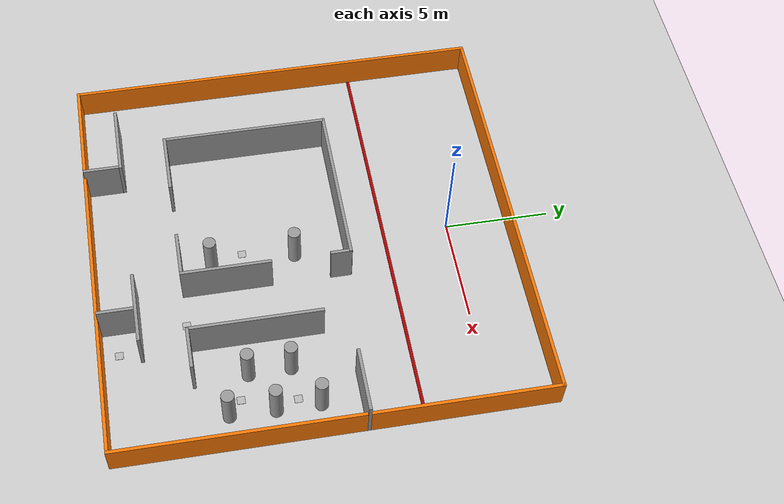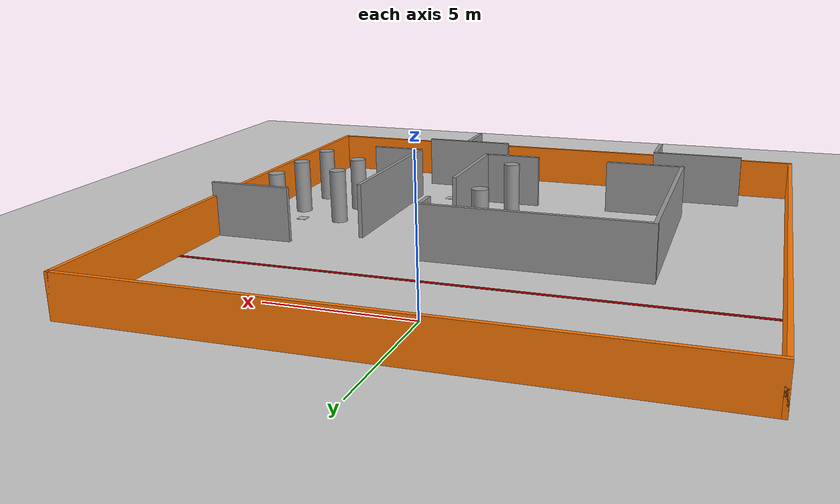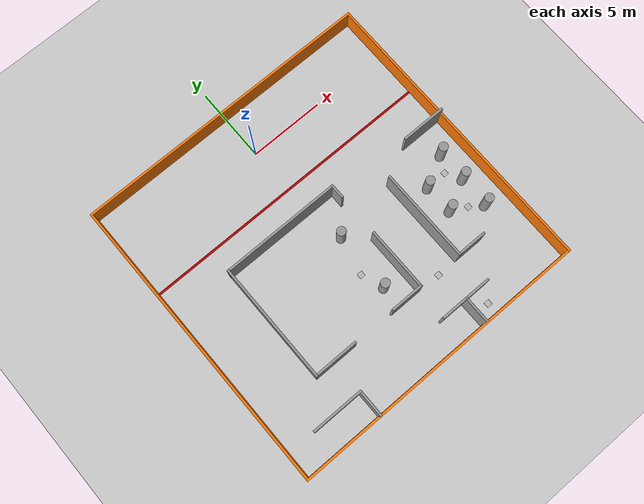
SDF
<sdf version="1.7">
 <world name="default">
  <model name="ground_plane">
   <static>1</static>
   <link name="link">
    <collision name="collision">
     <geometry><plane><normal>0 0 1</normal><size>100 100</size></plane></geometry>
     <surface>
      <contact><collide_bitmask>65535</collide_bitmask></contact>
      <friction><ode><mu>100</mu><mu2>50</mu2></ode></friction>
     </surface>
    </collision>
    <visual name="visual">
     <cast_shadows>0</cast_shadows>
     <geometry><plane><normal>0 0 1</normal><size>100 100</size></plane></geometry>
     <material>
      <script><uri>file://media/materials/scripts/gazebo.material</uri><name>Gazebo/Grey</name></script>
     </material>
    </visual>
   </link>
  </model>
  <model name="SAFMC_WALL">
   <pose>0.0015 -7 0 0 -0 0</pose>
   <link name="Wall_0">
    <collision name="Wall_0_Collision">
     <geometry><box><size>20.15 0.15 1.5</size></box></geometry>
     <pose>0 0 0.75 0 -0 0</pose>
    </collision>
    <visual name="Wall_0_Visual">
     <pose>0 0 0.75 0 -0 0</pose>
     <geometry><box><size>20.15 0.15 1.5</size></box></geometry>
     <material>
      <script><uri>file://media/materials/scripts/gazebo.material</uri><name>Gazebo/Grey</name></script>
      <ambient>0.996078 0.47451 0.0196078 1</ambient>
     </material>
     <meta><layer>0</layer></meta>
    </visual>
    <pose>-0.0015 9.925 0 0 -0 0</pose>
   </link>
   <link name="Wall_11">
    <collision name="Wall_11_Collision">
     <geometry><box><size>3 0.15 2</size></box></geometry>
     <pose>0 0 1 0 -0 0</pose>
    </collision>
    <visual name="Wall_11_Visual">
     <pose>0 0 1 0 -0 0</pose>
     <geometry><box><size>3 0.15 2</size></box></geometry>
     <material>
      <script><uri>file://media/materials/scripts/gazebo.material</uri><name>Gazebo/Grey</name></script>
      <ambient>0 0 0 1</ambient>
     </material>
     <meta><layer>0</layer></meta>
    </visual>
    <pose>8.5765 1.34761 0 0 -0 3.14159</pose>
   </link>
   <link name="Wall_13">
    <collision name="Wall_13_Collision">
     <geometry><box><size>6.25 0.15 2</size></box></geometry>
     <pose>0 0 1 0 -0 0</pose>
    </collision>
    <visual name="Wall_13_Visual">
     <pose>0 0 1 0 -0 0</pose>
     <geometry><box><size>6.25 0.15 2</size></box></geometry>
     <material>
      <script><uri>file://media/materials/scripts/gazebo.material</uri><name>Gazebo/Grey</name></script>
      <ambient>0 0 0 1</ambient>
     </material>
     <meta><layer>0</layer></meta>
    </visual>
    <pose>4.837 -2.89853 0 0 -0 -1.5708</pose>
   </link>
   <link name="Wall_14">
    <collision name="Wall_14_Collision">
     <geometry><box><size>2 0.15 2</size></box></geometry>
     <pose>0 0 1 0 -0 0</pose>
    </collision>
    <visual name="Wall_14_Visual">
     <pose>0 0 1 0 -0 0</pose>
     <geometry><box><size>2 0.15 2</size></box></geometry>
     <material>
      <script><uri>file://media/materials/scripts/gazebo.material</uri><name>Gazebo/Grey</name></script>
      <ambient>0 0 0 1</ambient>
     </material>
     <meta><layer>0</layer></meta>
    </visual>
    <pose>5.80647 -5.94853 0 0 -0 0</pose>
   </link>
   <link name="Wall_16">
    <collision name="Wall_16_Collision">
     <geometry><box><size>1.80681 0.15 2</size></box></geometry>
     <pose>0 0 1 0 -0 0</pose>
    </collision>
    <visual name="Wall_16_Visual">
     <pose>0 0 1 0 -0 0</pose>
     <geometry><box><size>1.80681 0.15 2</size></box></geometry>
     <material>
      <script><uri>file://media/materials/scripts/gazebo.material</uri><name>Gazebo/Grey</name></script>
      <ambient>0 0 0 1</ambient>
     </material>
     <meta><layer>0</layer></meta>
    </visual>
    <pose>-4.6625 -9.03559 0 0 -0 1.5708</pose>
   </link>
   <link name="Wall_17">
    <collision name="Wall_17_Collision">
     <geometry><box><size>3.5 0.15 2</size></box></geometry>
     <pose>0 0 1 0 -0 0</pose>
    </collision>
    <visual name="Wall_17_Visual">
     <pose>0 0 1 0 -0 0</pose>
     <geometry><box><size>3.5 0.15 2</size></box></geometry>
     <material>
      <script><uri>file://media/materials/scripts/gazebo.material</uri><name>Gazebo/Grey</name></script>
      <ambient>0 0 0 1</ambient>
     </material>
     <meta><layer>0</layer></meta>
    </visual>
    <pose>-6.3375 -8.15747 0 0 -0 3.14159</pose>
   </link>
   <link name="Wall_19">
    <collision name="Wall_19_Collision">
     <geometry><box><size>3.5 0.15 2</size></box></geometry>
     <pose>0 0 1 0 -0 0</pose>
    </collision>
    <visual name="Wall_19_Visual">
     <pose>0 0 1 0 -0 0</pose>
     <geometry><box><size>3.5 0.15 2</size></box></geometry>
     <material>
      <script><uri>file://media/materials/scripts/gazebo.material</uri><name>Gazebo/Grey</name></script>
      <ambient>0 0 0 1</ambient>
     </material>
     <meta><layer>0</layer></meta>
    </visual>
    <pose>3.35655 -8.11703 0 0 -0 0</pose>
   </link>
   <link name="Wall_2">
    <collision name="Wall_2_Collision">
     <geometry><box><size>20 0.15 1.5</size></box></geometry>
     <pose>0 0 0.75 0 -0 0</pose>
    </collision>
    <visual name="Wall_2_Visual">
     <pose>0 0 0.75 0 -0 0</pose>
     <geometry><box><size>20 0.15 1.5</size></box></geometry>
     <material>
      <script><uri>file://media/materials/scripts/gazebo.material</uri><name>Gazebo/Grey</name></script>
      <ambient>0.996078 0.47451 0.0196078 1</ambient>
     </material>
     <meta><layer>0</layer></meta>
    </visual>
    <pose>-10.0015 0 0 0 -0 -1.5708</pose>
   </link>
   <link name="Wall_21">
    <collision name="Wall_21_Collision">
     <geometry><box><size>8 0.15 2</size></box></geometry>
     <pose>0 0 1 0 -0 0</pose>
    </collision>
    <visual name="Wall_21_Visual">
     <pose>0 0 1 0 -0 0</pose>
     <geometry><box><size>8 0.15 2</size></box></geometry>
     <material>
      <script><uri>file://media/materials/scripts/gazebo.material</uri><name>Gazebo/Grey</name></script>
      <ambient>0 0 0 1</ambient>
     </material>
     <meta><layer>0</layer></meta>
    </visual>
    <pose>-2.06232 1.94815 0 0 -0 0</pose>
   </link>
   <link name="Wall_23">
    <collision name="Wall_23_Collision">
     <geometry><box><size>8 0.15 2</size></box></geometry>
     <pose>0 0 1 0 -0 0</pose>
    </collision>
    <visual name="Wall_23_Visual">
     <pose>0 0 1 0 -0 0</pose>
     <geometry><box><size>8 0.15 2</size></box></geometry>
     <material>
      <script><uri>file://media/materials/scripts/gazebo.material</uri><name>Gazebo/Grey</name></script>
      <ambient>0 0 0 1</ambient>
     </material>
     <meta><layer>0</layer></meta>
    </visual>
    <pose>-5.97626 -1.97693 0 0 -0 -1.57086</pose>
   </link>
   <link name="Wall_28">
    <collision name="Wall_28_Collision">
     <geometry><box><size>1 0.15 2</size></box></geometry>
     <pose>0 0 1 0 -0 0</pose>
    </collision>
    <visual name="Wall_28_Visual">
     <pose>0 0 1 0 -0 0</pose>
     <geometry><box><size>1 0.15 2</size></box></geometry>
     <material>
      <script><uri>file://media/materials/scripts/gazebo.material</uri><name>Gazebo/Grey</name></script>
      <ambient>0 0 0 1</ambient>
     </material>
     <meta><layer>0</layer></meta>
    </visual>
    <pose>1.8884 1.50443 0 0 -0 -1.5708</pose>
   </link>
   <link name="Wall_31">
    <collision name="Wall_31_Collision">
     <geometry><box><size>4.25 0.15 2</size></box></geometry>
     <pose>0 0 1 0 -0 0</pose>
    </collision>
    <visual name="Wall_31_Visual">
     <pose>0 0 1 0 -0 0</pose>
     <geometry><box><size>4.25 0.15 2</size></box></geometry>
     <material>
      <script><uri>file://media/materials/scripts/gazebo.material</uri><name>Gazebo/Grey</name></script>
      <ambient>0 0 0 1</ambient>
     </material>
     <meta><layer>0</layer></meta>
    </visual>
    <pose>1.8905 -3.85 0 0 -0 1.5708</pose>
   </link>
   <link name="Wall_34">
    <collision name="Wall_34_Collision">
     <geometry><box><size>20 0.15 0.01</size></box></geometry>
     <pose>0 0 0.005 0 -0 0</pose>
    </collision>
    <visual name="Wall_34_Visual">
     <pose>0 0 0.005 0 -0 0</pose>
     <geometry><box><size>20 0.15 0.01</size></box></geometry>
     <material>
      <script><uri>file://media/materials/scripts/gazebo.material</uri><name>Gazebo/Grey</name></script>
      <ambient>0.666667 0 0 1</ambient>
     </material>
     <meta><layer>0</layer></meta>
    </visual>
    <pose>-0.0665 3.925 0 0 -0 0</pose>
   </link>
   <link name="Wall_40">
    <collision name="Wall_40_Collision">
     <geometry><box><size>3 0.15 2</size></box></geometry>
     <pose>0 0 1 0 -0 0</pose>
    </collision>
    <visual name="Wall_40_Visual">
     <pose>0 0 1 0 -0 0</pose>
     <geometry><box><size>3 0.15 2</size></box></geometry>
     <material>
      <script><uri>file://media/materials/scripts/gazebo.material</uri><name>Gazebo/Grey</name></script>
      <ambient>0 0 0 1</ambient>
     </material>
     <meta><layer>0</layer></meta>
    </visual>
    <pose>-4.5515 -5.902 0 0 -0 0</pose>
   </link>
   <link name="Wall_42">
    <collision name="Wall_42_Collision">
     <geometry><box><size>2.25 0.15 2</size></box></geometry>
     <pose>0 0 1 0 -0 0</pose>
    </collision>
    <visual name="Wall_42_Visual">
     <pose>0 0 1 0 -0 0</pose>
     <geometry><box><size>2.25 0.15 2</size></box></geometry>
     <material>
      <script><uri>file://media/materials/scripts/gazebo.material</uri><name>Gazebo/Grey</name></script>
      <ambient>0 0 0 1</ambient>
     </material>
     <meta><layer>0</layer></meta>
    </visual>
    <pose>0.8405 -5.9 0 0 -0 3.14159</pose>
   </link>
   <link name="Wall_47">
    <collision name="Wall_47_Collision">
     <geometry><box><size>1.75 0.15 2</size></box></geometry>
     <pose>0 0 1 0 -0 0</pose>
    </collision>
    <visual name="Wall_47_Visual">
     <pose>0 0 1 0 -0 0</pose>
     <geometry><box><size>1.75 0.15 2</size></box></geometry>
     <material>
      <script><uri>file://media/materials/scripts/gazebo.material</uri><name>Gazebo/Grey</name></script>
      <ambient>0 0 0 1</ambient>
     </material>
     <meta><layer>0</layer></meta>
    </visual>
    <pose>3.3985 -8.995 0 0 -0 -1.5708</pose>
   </link>
   <link name="Wall_5">
    <collision name="Wall_5_Collision">
     <geometry><box><size>20 0.15 1.5</size></box></geometry>
     <pose>0 0 0.75 0 -0 0</pose>
    </collision>
    <visual name="Wall_5_Visual">
     <pose>0 0 0.75 0 -0 0</pose>
     <geometry><box><size>20 0.15 1.5</size></box></geometry>
     <material>
      <script><uri>file://media/materials/scripts/gazebo.material</uri><name>Gazebo/Grey</name></script>
      <ambient>0.996078 0.47451 0.0196078 1</ambient>
     </material>
     <meta><layer>0</layer></meta>
    </visual>
    <pose>-0.0765 -9.925 0 0 -0 0</pose>
   </link>
   <link name="Wall_7">
    <collision name="Wall_7_Collision">
     <geometry><box><size>20 0.15 1.5</size></box></geometry>
     <pose>0 0 0.75 0 -0 0</pose>
    </collision>
    <visual name="Wall_7_Visual">
     <pose>0 0 0.75 0 -0 0</pose>
     <geometry><box><size>20 0.15 1.5</size></box></geometry>
     <material>
      <script><uri>file://media/materials/scripts/gazebo.material</uri><name>Gazebo/Grey</name></script>
      <ambient>0.996078 0.47451 0.0196078 1</ambient>
     </material>
     <meta><layer>0</layer></meta>
    </visual>
    <pose>9.9985 0 0 0 -0 -1.5708</pose>
   </link>
   <static>1</static>
  </model>
  <model name="SAFMC_Pillar_clone_2_clone_clone_2_clone_2">
   <link name="link_3">
    <inertial>
     <mass>1</mass>
     <inertia><ixx>0.145833</ixx><ixy>0</ixy><ixz>0</ixz><iyy>0.145833</iyy><iyz>0</iyz><izz>0.125</izz></inertia>
    </inertial>
    <visual name="visual">
     <geometry><cylinder><radius>0.3</radius><length>2</length></cylinder></geometry>
     <material>
      <lighting>1</lighting>
      <script><uri>file://media/materials/scripts/gazebo.material</uri><name>Gazebo/Grey</name></script>
      <shader type="pixel"><normal_map>__default__</normal_map></shader>
      <ambient>0.3 0.3 0.3 1</ambient>
      <diffuse>0.7 0.7 0.7 1</diffuse>
      <specular>0.01 0.01 0.01 1</specular>
      <emissive>0 0 0 1</emissive>
     </material>
    </visual>
    <collision name="collision">
     <geometry><cylinder><radius>0.3</radius><length>2</length></cylinder></geometry>
     <surface>
      <friction>
       <ode><mu>1</mu><mu2>1</mu2><fdir1>0 0 0</fdir1><slip1>0</slip1><slip2>0</slip2></ode>
       <torsional>
        <coefficient>1</coefficient>
        <patch_radius>0</patch_radius>
        <surface_radius>0</surface_radius>
        <use_patch_radius>1</use_patch_radius>
        <ode><slip>0</slip></ode>
       </torsional>
      </friction>
      <bounce><restitution_coefficient>0</restitution_coefficient><threshold>1e+06</threshold></bounce>
      <contact>
       <collide_without_contact>0</collide_without_contact>
       <collide_without_contact_bitmask>1</collide_without_contact_bitmask>
       <collide_bitmask>1</collide_bitmask>
       <ode>
        <soft_cfm>0</soft_cfm>
        <soft_erp>0.2</soft_erp>
        <kp>1e+13</kp>
        <kd>1</kd>
        <max_vel>0.01</max_vel>
        <min_depth>0</min_depth>
       </ode>
       <bullet>
        <split_impulse>1</split_impulse>
        <split_impulse_penetration_threshold>-0.01</split_impulse_penetration_threshold>
        <soft_cfm>0</soft_cfm>
        <soft_erp>0.2</soft_erp>
        <kp>1e+13</kp>
        <kd>1</kd>
       </bullet>
      </contact>
     </surface>
    </collision>
   </link>
   <static>0</static>
   <pose>6.51897 -8.55212 0.999991 0 -0 9e-06</pose>
  </model>
  <model name="SAFMC_Pillar_clone_2_clone_clone_2_clone_2_clone">
   <link name="link_3">
    <inertial>
     <mass>1</mass>
     <inertia><ixx>0.145833</ixx><ixy>0</ixy><ixz>0</ixz><iyy>0.145833</iyy><iyz>0</iyz><izz>0.125</izz></inertia>
    </inertial>
    <visual name="visual">
     <geometry><cylinder><radius>0.3</radius><length>2</length></cylinder></geometry>
     <material>
      <lighting>1</lighting>
      <script><uri>file://media/materials/scripts/gazebo.material</uri><name>Gazebo/Grey</name></script>
      <shader type="pixel"><normal_map>__default__</normal_map></shader>
      <ambient>0.3 0.3 0.3 1</ambient>
      <diffuse>0.7 0.7 0.7 1</diffuse>
      <specular>0.01 0.01 0.01 1</specular>
      <emissive>0 0 0 1</emissive>
     </material>
    </visual>
    <collision name="collision">
     <geometry><cylinder><radius>0.3</radius><length>2</length></cylinder></geometry>
     <surface>
      <friction>
       <ode><mu>1</mu><mu2>1</mu2><fdir1>0 0 0</fdir1><slip1>0</slip1><slip2>0</slip2></ode>
       <torsional>
        <coefficient>1</coefficient>
        <patch_radius>0</patch_radius>
        <surface_radius>0</surface_radius>
        <use_patch_radius>1</use_patch_radius>
        <ode><slip>0</slip></ode>
       </torsional>
      </friction>
      <bounce><restitution_coefficient>0</restitution_coefficient><threshold>1e+06</threshold></bounce>
      <contact>
       <collide_without_contact>0</collide_without_contact>
       <collide_without_contact_bitmask>1</collide_without_contact_bitmask>
       <collide_bitmask>1</collide_bitmask>
       <ode>
        <soft_cfm>0</soft_cfm>
        <soft_erp>0.2</soft_erp>
        <kp>1e+13</kp>
        <kd>1</kd>
        <max_vel>0.01</max_vel>
        <min_depth>0</min_depth>
       </ode>
       <bullet>
        <split_impulse>1</split_impulse>
        <split_impulse_penetration_threshold>-0.01</split_impulse_penetration_threshold>
        <soft_cfm>0</soft_cfm>
        <soft_erp>0.2</soft_erp>
        <kp>1e+13</kp>
        <kd>1</kd>
       </bullet>
      </contact>
     </surface>
    </collision>
   </link>
   <static>0</static>
   <pose>8.51518 -7.49972 0.999991 0 -0 1.3e-05</pose>
  </model>
  <model name="SAFMC_Pillar_clone_2_clone_clone_2_clone_2_clone_0">
   <link name="link_3">
    <inertial>
     <mass>1</mass>
     <inertia><ixx>0.145833</ixx><ixy>0</ixy><ixz>0</ixz><iyy>0.145833</iyy><iyz>0</iyz><izz>0.125</izz></inertia>
    </inertial>
    <visual name="visual">
     <geometry><cylinder><radius>0.3</radius><length>2</length></cylinder></geometry>
     <material>
      <lighting>1</lighting>
      <script><uri>file://media/materials/scripts/gazebo.material</uri><name>Gazebo/Grey</name></script>
      <shader type="pixel"><normal_map>__default__</normal_map></shader>
      <ambient>0.3 0.3 0.3 1</ambient>
      <diffuse>0.7 0.7 0.7 1</diffuse>
      <specular>0.01 0.01 0.01 1</specular>
      <emissive>0 0 0 1</emissive>
     </material>
    </visual>
    <collision name="collision">
     <geometry><cylinder><radius>0.3</radius><length>2</length></cylinder></geometry>
     <surface>
      <friction>
       <ode><mu>1</mu><mu2>1</mu2><fdir1>0 0 0</fdir1><slip1>0</slip1><slip2>0</slip2></ode>
       <torsional>
        <coefficient>1</coefficient>
        <patch_radius>0</patch_radius>
        <surface_radius>0</surface_radius>
        <use_patch_radius>1</use_patch_radius>
        <ode><slip>0</slip></ode>
       </torsional>
      </friction>
      <bounce><restitution_coefficient>0</restitution_coefficient><threshold>1e+06</threshold></bounce>
      <contact>
       <collide_without_contact>0</collide_without_contact>
       <collide_without_contact_bitmask>1</collide_without_contact_bitmask>
       <collide_bitmask>1</collide_bitmask>
       <ode>
        <soft_cfm>0</soft_cfm>
        <soft_erp>0.2</soft_erp>
        <kp>1e+13</kp>
        <kd>1</kd>
        <max_vel>0.01</max_vel>
        <min_depth>0</min_depth>
       </ode>
       <bullet>
        <split_impulse>1</split_impulse>
        <split_impulse_penetration_threshold>-0.01</split_impulse_penetration_threshold>
        <soft_cfm>0</soft_cfm>
        <soft_erp>0.2</soft_erp>
        <kp>1e+13</kp>
        <kd>1</kd>
       </bullet>
      </contact>
     </surface>
    </collision>
   </link>
   <static>0</static>
   <pose>8.51096 -9.51251 0.999997 0 -0 8e-06</pose>
  </model>
  <model name="SAFMC_Pillar_clone_2_clone_clone_2_clone_2_clone_1">
   <link name="link_3">
    <inertial>
     <mass>1</mass>
     <inertia><ixx>0.145833</ixx><ixy>0</ixy><ixz>0</ixz><iyy>0.145833</iyy><iyz>0</iyz><izz>0.125</izz></inertia>
    </inertial>
    <visual name="visual">
     <geometry><cylinder><radius>0.3</radius><length>2</length></cylinder></geometry>
     <material>
      <lighting>1</lighting>
      <script><uri>file://media/materials/scripts/gazebo.material</uri><name>Gazebo/Grey</name></script>
      <shader type="pixel"><normal_map>__default__</normal_map></shader>
      <ambient>0.3 0.3 0.3 1</ambient>
      <diffuse>0.7 0.7 0.7 1</diffuse>
      <specular>0.01 0.01 0.01 1</specular>
      <emissive>0 0 0 1</emissive>
     </material>
    </visual>
    <collision name="collision">
     <geometry><cylinder><radius>0.3</radius><length>2</length></cylinder></geometry>
     <surface>
      <friction>
       <ode><mu>1</mu><mu2>1</mu2><fdir1>0 0 0</fdir1><slip1>0</slip1><slip2>0</slip2></ode>
       <torsional>
        <coefficient>1</coefficient>
        <patch_radius>0</patch_radius>
        <surface_radius>0</surface_radius>
        <use_patch_radius>1</use_patch_radius>
        <ode><slip>0</slip></ode>
       </torsional>
      </friction>
      <bounce><restitution_coefficient>0</restitution_coefficient><threshold>1e+06</threshold></bounce>
      <contact>
       <collide_without_contact>0</collide_without_contact>
       <collide_without_contact_bitmask>1</collide_without_contact_bitmask>
       <collide_bitmask>1</collide_bitmask>
       <ode>
        <soft_cfm>0</soft_cfm>
        <soft_erp>0.2</soft_erp>
        <kp>1e+13</kp>
        <kd>1</kd>
        <max_vel>0.01</max_vel>
        <min_depth>0</min_depth>
       </ode>
       <bullet>
        <split_impulse>1</split_impulse>
        <split_impulse_penetration_threshold>-0.01</split_impulse_penetration_threshold>
        <soft_cfm>0</soft_cfm>
        <soft_erp>0.2</soft_erp>
        <kp>1e+13</kp>
        <kd>1</kd>
       </bullet>
      </contact>
     </surface>
    </collision>
   </link>
   <static>0</static>
   <pose>6.55316 -10.5016 0.999997 0 -0 1.2e-05</pose>
  </model>
  <model name="SAFMC_Pillar_clone_2_clone_clone_2_clone_2_clone_2">
   <link name="link_3">
    <inertial>
     <mass>1</mass>
     <inertia><ixx>0.145833</ixx><ixy>0</ixy><ixz>0</ixz><iyy>0.145833</iyy><iyz>0</iyz><izz>0.125</izz></inertia>
    </inertial>
    <visual name="visual">
     <geometry><cylinder><radius>0.3</radius><length>2</length></cylinder></geometry>
     <material>
      <lighting>1</lighting>
      <script><uri>file://media/materials/scripts/gazebo.material</uri><name>Gazebo/Grey</name></script>
      <shader type="pixel"><normal_map>__default__</normal_map></shader>
      <ambient>0.3 0.3 0.3 1</ambient>
      <diffuse>0.7 0.7 0.7 1</diffuse>
      <specular>0.01 0.01 0.01 1</specular>
      <emissive>0 0 0 1</emissive>
     </material>
    </visual>
    <collision name="collision">
     <geometry><cylinder><radius>0.3</radius><length>2</length></cylinder></geometry>
     <surface>
      <friction>
       <ode><mu>1</mu><mu2>1</mu2><fdir1>0 0 0</fdir1><slip1>0</slip1><slip2>0</slip2></ode>
       <torsional>
        <coefficient>1</coefficient>
        <patch_radius>0</patch_radius>
        <surface_radius>0</surface_radius>
        <use_patch_radius>1</use_patch_radius>
        <ode><slip>0</slip></ode>
       </torsional>
      </friction>
      <bounce><restitution_coefficient>0</restitution_coefficient><threshold>1e+06</threshold></bounce>
      <contact>
       <collide_without_contact>0</collide_without_contact>
       <collide_without_contact_bitmask>1</collide_without_contact_bitmask>
       <collide_bitmask>1</collide_bitmask>
       <ode>
        <soft_cfm>0</soft_cfm>
        <soft_erp>0.2</soft_erp>
        <kp>1e+13</kp>
        <kd>1</kd>
        <max_vel>0.01</max_vel>
        <min_depth>0</min_depth>
       </ode>
       <bullet>
        <split_impulse>1</split_impulse>
        <split_impulse_penetration_threshold>-0.01</split_impulse_penetration_threshold>
        <soft_cfm>0</soft_cfm>
        <soft_erp>0.2</soft_erp>
        <kp>1e+13</kp>
        <kd>1</kd>
       </bullet>
      </contact>
     </surface>
    </collision>
   </link>
   <static>0</static>
   <pose>8.45453 -11.5909 0.999999 0 -0 1.2e-05</pose>
  </model>
  <model name="SAFMC_Pillar_clone_2_clone_clone_2_clone_2_clone_8">
   <link name="link_3">
    <inertial>
     <mass>1</mass>
     <inertia><ixx>0.145833</ixx><ixy>0</ixy><ixz>0</ixz><iyy>0.145833</iyy><iyz>0</iyz><izz>0.125</izz></inertia>
    </inertial>
    <visual name="visual">
     <geometry><cylinder><radius>0.3</radius><length>2</length></cylinder></geometry>
     <material>
      <lighting>1</lighting>
      <script><uri>file://media/materials/scripts/gazebo.material</uri><name>Gazebo/Grey</name></script>
      <shader type="pixel"><normal_map>__default__</normal_map></shader>
      <ambient>0.3 0.3 0.3 1</ambient>
      <diffuse>0.7 0.7 0.7 1</diffuse>
      <specular>0.01 0.01 0.01 1</specular>
      <emissive>0 0 0 1</emissive>
     </material>
    </visual>
    <collision name="collision">
     <geometry><cylinder><radius>0.3</radius><length>2</length></cylinder></geometry>
     <surface>
      <friction>
       <ode><mu>1</mu><mu2>1</mu2><fdir1>0 0 0</fdir1><slip1>0</slip1><slip2>0</slip2></ode>
       <torsional>
        <coefficient>1</coefficient>
        <patch_radius>0</patch_radius>
        <surface_radius>0</surface_radius>
        <use_patch_radius>1</use_patch_radius>
        <ode><slip>0</slip></ode>
       </torsional>
      </friction>
      <bounce><restitution_coefficient>0</restitution_coefficient><threshold>1e+06</threshold></bounce>
      <contact>
       <collide_without_contact>0</collide_without_contact>
       <collide_without_contact_bitmask>1</collide_without_contact_bitmask>
       <collide_bitmask>1</collide_bitmask>
       <ode>
        <soft_cfm>0</soft_cfm>
        <soft_erp>0.2</soft_erp>
        <kp>1e+13</kp>
        <kd>1</kd>
        <max_vel>0.01</max_vel>
        <min_depth>0</min_depth>
       </ode>
       <bullet>
        <split_impulse>1</split_impulse>
        <split_impulse_penetration_threshold>-0.01</split_impulse_penetration_threshold>
        <soft_cfm>0</soft_cfm>
        <soft_erp>0.2</soft_erp>
        <kp>1e+13</kp>
        <kd>1</kd>
       </bullet>
      </contact>
     </surface>
    </collision>
   </link>
   <static>0</static>
   <pose>0.507252 -7.48441 0.999999 0 -0 4e-06</pose>
  </model>
  <model name="SAFMC_Pillar_clone_2_clone_clone_2_clone_2_clone_7">
   <link name="link_3">
    <inertial>
     <mass>1</mass>
     <inertia><ixx>0.145833</ixx><ixy>0</ixy><ixz>0</ixz><iyy>0.145833</iyy><iyz>0</iyz><izz>0.125</izz></inertia>
    </inertial>
    <visual name="visual">
     <geometry><cylinder><radius>0.3</radius><length>2</length></cylinder></geometry>
     <material>
      <lighting>1</lighting>
      <script><uri>file://media/materials/scripts/gazebo.material</uri><name>Gazebo/Grey</name></script>
      <shader type="pixel"><normal_map>__default__</normal_map></shader>
      <ambient>0.3 0.3 0.3 1</ambient>
      <diffuse>0.7 0.7 0.7 1</diffuse>
      <specular>0.01 0.01 0.01 1</specular>
      <emissive>0 0 0 1</emissive>
     </material>
    </visual>
    <collision name="collision">
     <geometry><cylinder><radius>0.3</radius><length>2</length></cylinder></geometry>
     <surface>
      <friction>
       <ode><mu>1</mu><mu2>1</mu2><fdir1>0 0 0</fdir1><slip1>0</slip1><slip2>0</slip2></ode>
       <torsional>
        <coefficient>1</coefficient>
        <patch_radius>0</patch_radius>
        <surface_radius>0</surface_radius>
        <use_patch_radius>1</use_patch_radius>
        <ode><slip>0</slip></ode>
       </torsional>
      </friction>
      <bounce><restitution_coefficient>0</restitution_coefficient><threshold>1e+06</threshold></bounce>
      <contact>
       <collide_without_contact>0</collide_without_contact>
       <collide_without_contact_bitmask>1</collide_without_contact_bitmask>
       <collide_bitmask>1</collide_bitmask>
       <ode>
        <soft_cfm>0</soft_cfm>
        <soft_erp>0.2</soft_erp>
        <kp>1e+13</kp>
        <kd>1</kd>
        <max_vel>0.01</max_vel>
        <min_depth>0</min_depth>
       </ode>
       <bullet>
        <split_impulse>1</split_impulse>
        <split_impulse_penetration_threshold>-0.01</split_impulse_penetration_threshold>
        <soft_cfm>0</soft_cfm>
        <soft_erp>0.2</soft_erp>
        <kp>1e+13</kp>
        <kd>1</kd>
       </bullet>
      </contact>
     </surface>
    </collision>
   </link>
   <static>0</static>
   <pose>0.443607 -11.445 0.999991 0 -0 1.7e-05</pose>
  </model>
  <model name="Tag36h11_0_clone">
   <static>1</static>
   <link name="link">
    <collision name="collision"><geometry><box><size>0.3702 0.3702 0.01</size></box></geometry></collision>
    <visual name="visual">
     <cast_shadows>0</cast_shadows>
     <geometry><box><size>0.3702 0.3702 0.01</size></box></geometry>
     <material>
      <script>
       <uri>model://Tag36h11_0/materials/scripts</uri>
       <uri>model://Tag36h11_0/materials/textures</uri>
       <name>Tag36h11_0</name>
      </script>
     </material>
    </visual>
   </link>
   <pose>8.05231 -8.47291 0 0 -0 0</pose>
  </model>
  <model name="Tag36h11_0_clone_0">
   <static>1</static>
   <link name="link">
    <collision name="collision"><geometry><box><size>0.3702 0.3702 0.01</size></box></geometry></collision>
    <visual name="visual">
     <cast_shadows>0</cast_shadows>
     <geometry><box><size>0.3702 0.3702 0.01</size></box></geometry>
     <material>
      <script>
       <uri>model://Tag36h11_0/materials/scripts</uri>
       <uri>model://Tag36h11_0/materials/textures</uri>
       <name>Tag36h11_0</name>
      </script>
     </material>
    </visual>
   </link>
   <pose>4.59809 -16.1529 0 0 -0 0</pose>
  </model>
  <model name="Tag36h11_0_clone_5">
   <static>1</static>
   <link name="link">
    <collision name="collision"><geometry><box><size>0.3702 0.3702 0.01</size></box></geometry></collision>
    <visual name="visual">
     <cast_shadows>0</cast_shadows>
     <geometry><box><size>0.3702 0.3702 0.01</size></box></geometry>
     <material>
      <script>
       <uri>model://Tag36h11_0/materials/scripts</uri>
       <uri>model://Tag36h11_0/materials/textures</uri>
       <name>Tag36h11_0</name>
      </script>
     </material>
    </visual>
   </link>
   <pose>3.50558 -12.9683 0 0 -0 0</pose>
  </model>
  <model name="Tag36h11_1">
   <static>1</static>
   <link name="link">
    <collision name="collision"><geometry><box><size>0.3702 0.3702 0.01</size></box></geometry></collision>
    <visual name="visual">
     <cast_shadows>0</cast_shadows>
     <geometry><box><size>0.3702 0.3702 0.01</size></box></geometry>
     <material>
      <script>
       <uri>model://Tag36h11_1/materials/scripts</uri>
       <uri>model://Tag36h11_1/materials/textures</uri>
       <name>Tag36h11_1</name>
      </script>
     </material>
    </visual>
   </link>
   <pose>7.71375 -10.9972 0 0 -0 0</pose>
  </model>
  <model name="Tag36h11_1_clone">
   <static>1</static>
   <link name="link">
    <collision name="collision"><geometry><box><size>0.3702 0.3702 0.01</size></box></geometry></collision>
    <visual name="visual">
     <cast_shadows>0</cast_shadows>
     <geometry><box><size>0.3702 0.3702 0.01</size></box></geometry>
     <material>
      <script>
       <uri>model://Tag36h11_1/materials/scripts</uri>
       <uri>model://Tag36h11_1/materials/textures</uri>
       <name>Tag36h11_1</name>
      </script>
     </material>
    </visual>
   </link>
   <pose>-0.019244 -9.95342 0 0 -0 0</pose>
  </model>
 </world>
</sdf>
